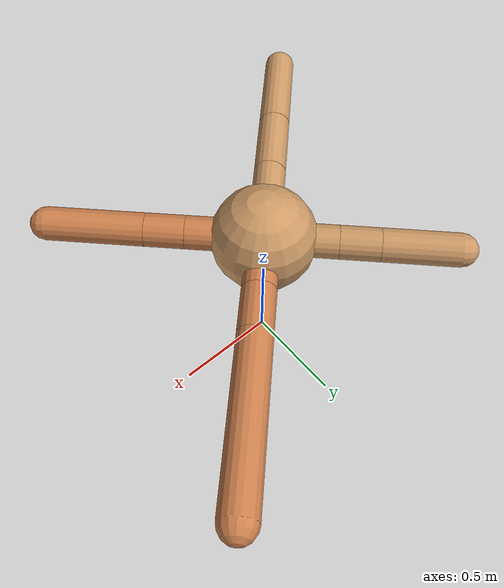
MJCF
<mujoco model="ant">
  <compiler angle="degree" coordinate="local" inertiafromgeom="true" />
  <option integrator="RK4" timestep="0.01" />
  <custom>
    <numeric data="0.0 0.0 0.55 1.0 0.0 0.0 0.0 0.0 1.0 0.0 -1.0 0.0 -1.0 0.0 1.0" name="init_qpos" />
  </custom>
  <default>
    <joint armature="1" damping="1" limited="true" />
    <geom conaffinity="0" condim="3" density="5.0" friction="1.5 0.1 0.1" margin="0.01" rgba="0.8 0.6 0.4 1" />
  </default>
  <worldbody>
    <body name="torso" pos="0 0 0.75">
      <geom name="torso_geom" pos="0 0 0" size="0.25" type="sphere" />

      <body name="front_left_leg" pos="0 0 0">
        <geom fromto="0.0 0.0 0.0 0.20822823616452465 0.20822823616452465 0.0" name="aux_1_geom" size="0.08" type="capsule" rgba=".8 .5 .3 1" />
        <body name="aux_1" pos="0.20822823616452465 0.20822823616452465 0.0">
          <joint axis="0 0 1" name="hip_1" pos="0.0 0.0 0.0" range="-40 40" type="hinge" />
          <geom fromto="0.0 0.0 0.0 0.15527873505560674 0.15527873505560674 0.0" name="left_leg_geom" size="0.08" type="capsule" rgba=".8 .5 .3 1" />
          <body pos="0.15527873505560674 0.15527873505560674 0.0" name="front_left_foot">
            <joint axis="-1 1 0" name="ankle_1" pos="0.0 0.0 0.0" range="30 100" type="hinge" />
            <geom fromto="0.0 0.0 0.0 0.5229954257750098 0.5229954257750098 0.0" name="left_ankle_geom" size="0.08" type="capsule" rgba=".8 .5 .3 1" />
          </body>
        </body>
      </body>
      <body name="front_right_leg" pos="0 0 0">
        <geom fromto="0.0 0.0 0.0 -0.24340304111902125 0.24340304111902125 0.0" name="aux_2_geom" size="0.08" type="capsule" />
        <body name="aux_2" pos="-0.24340304111902125 0.24340304111902125 0.0">
          <joint axis="0 0 1" name="hip_2" pos="0.0 0.0 0.0" range="-40 40" type="hinge" />
          <geom fromto="0.0 0.0 0.0 -0.1343119713544442 0.1343119713544442 0.0" name="right_leg_geom" size="0.08" type="capsule" />
          <body pos="-0.1343119713544442 0.1343119713544442 0.0" name="front_right_foot">
            <joint axis="1 1 0" name="ankle_2" pos="0.0 0.0 0.0" range="-100 -30" type="hinge" />
            <geom fromto="0.0 0.0 0.0 -0.2573707823915194 0.2573707823915194 0.0" name="right_ankle_geom" size="0.08" type="capsule" />
          </body>
        </body>
      </body>
      <body name="left_back_leg" pos="0 0 0">
        <geom fromto="0.0 0.0 0.0 -0.2988163859433922 -0.2988163859433922 0.0" name="aux_3_geom" size="0.08" type="capsule" />
        <body name="aux_3" pos="-0.2988163859433922 -0.2988163859433922 0.0">
          <joint axis="0 0 1" name="hip_3" pos="0.0 0.0 0.0" range="-40 40" type="hinge" />
          <geom fromto="0.0 0.0 0.0 -0.255505299585234 -0.255505299585234 0.0" name="back_leg_geom" size="0.08" type="capsule" />
          <body pos="-0.255505299585234 -0.255505299585234 0.0" name="left_back_foot">
            <joint axis="-1 1 0" name="ankle_3" pos="0.0 0.0 0.0" range="-100 -30" type="hinge" />
            <geom fromto="0.0 0.0 0.0 -0.35918838922356094 -0.35918838922356094 0.0" name="third_ankle_geom" size="0.08" type="capsule" />
          </body>
        </body>
      </body>
      <body name="right_back_leg" pos="0 0 0">
        <geom fromto="0.0 0.0 0.0 0.25628616446301195 -0.25628616446301195 0.0" name="aux_4_geom" size="0.08" type="capsule" rgba=".8 .5 .3 1" />
        <body name="aux_4" pos="0.25628616446301195 -0.25628616446301195 0.0">
          <joint axis="0 0 1" name="hip_4" pos="0.0 0.0 0.0" range="-40 40" type="hinge" />
          <geom fromto="0.0 0.0 0.0 0.13411616260326592 -0.13411616260326592 0.0" name="rightback_leg_geom" size="0.08" type="capsule" rgba=".8 .5 .3 1" />
          <body pos="0.13411616260326592 -0.13411616260326592 0.0" name="right_back_foot">
            <joint axis="1 1 0" name="ankle_4" pos="0.0 0.0 0.0" range="30 100" type="hinge" />
            <geom fromto="0.0 0.0 0.0 0.3299222924544787 -0.3299222924544787 0.0" name="fourth_ankle_geom" size="0.08" type="capsule" rgba=".8 .5 .3 1" />
          </body>
        </body>
      </body>
    </body>
  </worldbody>
  <actuator>
    <motor ctrllimited="true" ctrlrange="-1.0 1.0" joint="hip_4" gear="150" />
    <motor ctrllimited="true" ctrlrange="-1.0 1.0" joint="ankle_4" gear="150" />
    <motor ctrllimited="true" ctrlrange="-1.0 1.0" joint="hip_1" gear="150" />
    <motor ctrllimited="true" ctrlrange="-1.0 1.0" joint="ankle_1" gear="150" />
    <motor ctrllimited="true" ctrlrange="-1.0 1.0" joint="hip_2" gear="150" />
    <motor ctrllimited="true" ctrlrange="-1.0 1.0" joint="ankle_2" gear="150" />
    <motor ctrllimited="true" ctrlrange="-1.0 1.0" joint="hip_3" gear="150" />
    <motor ctrllimited="true" ctrlrange="-1.0 1.0" joint="ankle_3" gear="150" />
  </actuator>
</mujoco>
